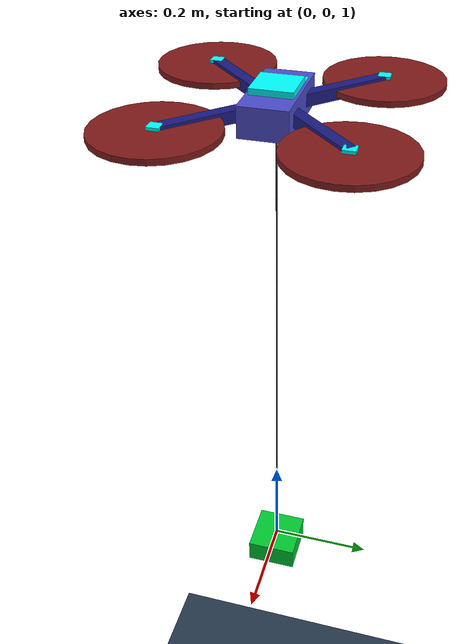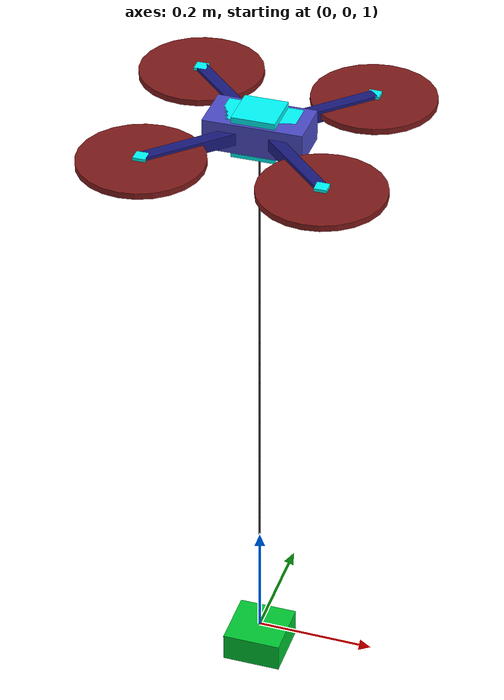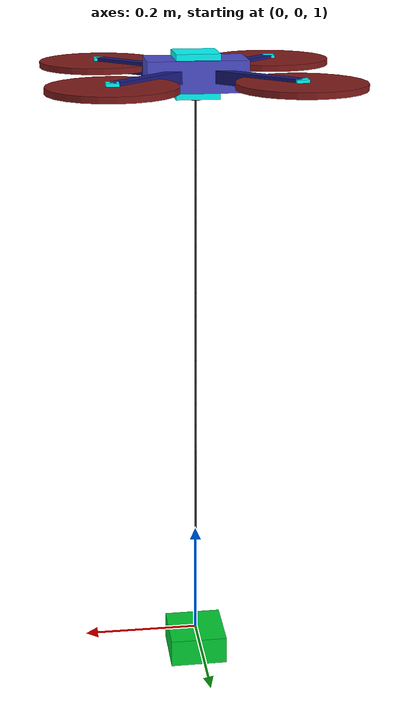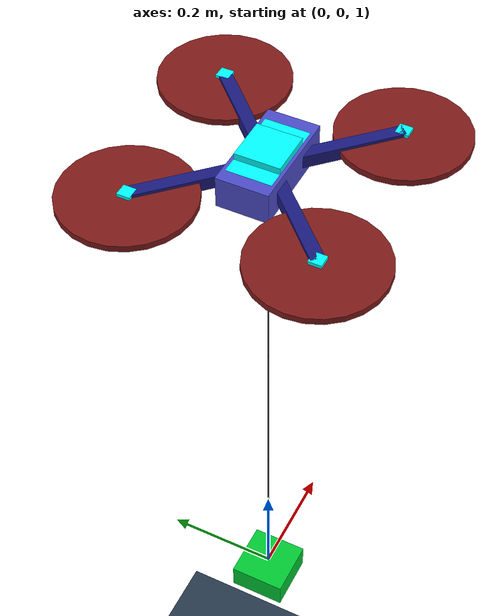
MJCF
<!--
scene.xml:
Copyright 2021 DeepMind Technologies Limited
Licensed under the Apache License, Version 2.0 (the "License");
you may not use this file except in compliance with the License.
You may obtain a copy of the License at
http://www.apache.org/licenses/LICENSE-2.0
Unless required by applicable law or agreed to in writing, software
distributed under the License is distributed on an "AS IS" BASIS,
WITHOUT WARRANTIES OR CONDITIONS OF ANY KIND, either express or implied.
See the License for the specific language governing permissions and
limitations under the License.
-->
<?xml version="1.0"?>
<mujoco model="QuadFlexibleCablePayload">
  <include file="scene.xml" />
  <compiler angle="degree" coordinate="local" inertiafromgeom="true" />
  <asset>
    <texture type="skybox" builtin="gradient" rgb1="1.0 1.0 1.0" rgb2="0.6 0.8 1.0" width="256"
      height="256" />
  </asset>
  <worldbody>
    <geom name="ground" type="plane" size="5.0 5.0 0.02" friction="1.0" pos="0.0 0.0 0.0"
      rgba="0.8 0.9 0.8 1.0" />
    <light directional="true" diffuse=".9 .9 .9" specular=".3 .3 .3" pos="0 0 4.0" dir="0 0.15 -1" />
    <body name="quadrotor" pos="0.0 0.0 2.0" quat="1 0 0 0">
      <geom name="quadrotor_geom" type="box" pos="0.0 0.0 0.0" quat="1 0 0 0" size="0.08 0.04 0.025"
        mass="0.75" density="1000" rgba="0.3 0.3 0.8 1.0" />
      <joint name="quadrotor_root_joint" type="free" />
      <geom name="quadrotor_rotor_arm_geom_0" type="box" pos="0.0 0.0 0.0"
        quat="0.92388 0 0 0.382683" size="0.2 0.01 0.01" mass="0.01" density="1000"
        rgba="0.1 0.1 0.5 1.0" />
      <geom name="quadrotor_rotor_prop_geom_0" type="cylinder" size="0.1 0.005"
        pos="0.1414213562373095 0.14142135623730953 0.0" mass="0.05" density="1000"
        rgba="0.5 0.1 0.1 1.0" />
      <geom name="quadrotor_rotor_arm_geom_1" type="box" pos="0.0 0.0 0.0"
        quat="0.382683 0 0 0.92388" size="0.2 0.01 0.01" mass="0.01" density="1000"
        rgba="0.1 0.1 0.5 1.0" />
      <geom name="quadrotor_rotor_prop_geom_1" type="cylinder" size="0.1 0.005"
        pos="-0.1414213562373095 0.14142135623730953 0.0" mass="0.05" density="1000"
        rgba="0.5 0.1 0.1 1.0" />
      <geom name="quadrotor_rotor_arm_geom_2" type="box" pos="0.0 0.0 0.0"
        quat="-0.382683 0 0 0.92388" size="0.2 0.01 0.01" mass="0.01" density="1000"
        rgba="0.1 0.1 0.5 1.0" />
      <geom name="quadrotor_rotor_prop_geom_2" type="cylinder" size="0.1 0.005"
        pos="-0.1414213562373095 -0.1414213562373095 0.0" mass="0.05" density="1000"
        rgba="0.5 0.1 0.1 1.0" />
      <geom name="quadrotor_rotor_arm_geom_3" type="box" pos="0.0 0.0 0.0"
        quat="-0.92388 0 0 0.382683" size="0.2 0.01 0.01" mass="0.01" density="1000"
        rgba="0.1 0.1 0.5 1.0" />
      <geom name="quadrotor_rotor_prop_geom_3" type="cylinder" size="0.1 0.005"
        pos="0.14142135623730948 -0.14142135623730956 0.0" mass="0.05" density="1000"
        rgba="0.5 0.1 0.1 1.0" />
      <site name="quadrotor_end1" type="sphere" pos="0.0 0.0 0.0" quat="1 0 0 0" size="0.01"
        rgba="0.1 0.1 0.5 1.0" />
      <site name="site0" type="box" pos="0.1414213562373095 0.14142135623730953 0.0" quat="1 0 0 0"
        size="0.01 0.01 0.01" rgba="0.0 1 1 1.0" />
      <site name="site1" type="box" pos="-0.1414213562373095 0.14142135623730953 0.0" quat="1 0 0 0"
        size="0.01 0.01 0.01" rgba="0.0 1 1 1.0" />
      <site name="site2" type="box" pos="-0.1414213562373095 -0.1414213562373095 0.0" quat="1 0 0 0"
        size="0.01 0.01 0.01" rgba="0.0 1 1 1.0" />
      <site name="site3" type="box" pos="0.14142135623730948 -0.14142135623730956 0.0"
        quat="1 0 0 0" size="0.01 0.01 0.01" rgba="0.0 1 1 1.0" />
      <site name="quadrotor_thrust" type="box" pos="0.0 0.0 0.0" quat="1 0 0 0"
        size="0.035 0.035 0.035" rgba="0.0 1 1 1.0" />
      <site name="quadrotor_Mx" type="box" pos="0.0 0.0 0.0" quat="1 0 0 0" size="0.06 0.035 0.025"
        rgba="0.0 1 1 1.0" />
      <site name="quadrotor_My" type="box" pos="0.0 0.0 0.0" quat="1 0 0 0" size="0.06 0.035 0.025"
        rgba="0.0 1 1 1.0" />
      <site name="quadrotor_Mz" type="box" pos="0.0 0.0 0.0" quat="1 0 0 0" size="0.06 0.035 0.025"
        rgba="0.0 1 1 1.0" />
      <body name="cable_0" pos="0.0 0.0 -0.02" quat="1 0 0 0">
        <joint name="cable_quad_joint_0" type="ball" limited="false" pos="0.0 0.0 0.02"
          damping="0.0001" stiffness="0" />
        <geom name="cable_cylinder_0" type="cylinder" size="0.01 0.02" pos="0.0 0.0 0.0"
          mass="0.0004" density="50" rgba="0.2 0.2 0.2 1.0" />
        <body name="cable_1" pos="0.0 0.0 -0.04" quat="1 0 0 0">
          <joint name="cable_quad_joint_1" type="ball" limited="false" pos="0.0 0.0 0.02"
            damping="0.001" stiffness="0.0" />
          <geom name="cable_cylinder_1" type="cylinder" size="0.0015 0.02" pos="0.0 0.0 0.0"
            mass="0.0004" density="50" rgba="0.2 0.2 0.2 1.0" />
          <body name="cable_2" pos="0.0 0.0 -0.04" quat="1 0 0 0">
            <joint name="cable_quad_joint_2" type="ball" limited="false" pos="0.0 0.0 0.02"
              damping="0.001" stiffness="0.0" />
            <geom name="cable_cylinder_2" type="cylinder" size="0.0015 0.02" pos="0.0 0.0 0.0"
              mass="0.0004" density="50" rgba="0.2 0.2 0.2 1.0" />
            <body name="cable_3" pos="0.0 0.0 -0.04" quat="1 0 0 0">
              <joint name="cable_quad_joint_3" type="ball" limited="false" pos="0.0 0.0 0.02"
                damping="0.001" stiffness="0.0" />
              <geom name="cable_cylinder_3" type="cylinder" size="0.0015 0.02" pos="0.0 0.0 0.0"
                mass="0.0004" density="50" rgba="0.2 0.2 0.2 1.0" />
              <body name="cable_4" pos="0.0 0.0 -0.04" quat="1 0 0 0">
                <joint name="cable_quad_joint_4" type="ball" limited="false" pos="0.0 0.0 0.02"
                  damping="0.001" stiffness="0.0" />
                <geom name="cable_cylinder_4" type="cylinder" size="0.0015 0.02" pos="0.0 0.0 0.0"
                  mass="0.0004" density="50" rgba="0.2 0.2 0.2 1.0" />
                <body name="cable_5" pos="0.0 0.0 -0.04" quat="1 0 0 0">
                  <joint name="cable_quad_joint_5" type="ball" limited="false" pos="0.0 0.0 0.02"
                    damping="0.001" stiffness="0.0" />
                  <geom name="cable_cylinder_5" type="cylinder" size="0.0015 0.02" pos="0.0 0.0 0.0"
                    mass="0.0004" density="50" rgba="0.2 0.2 0.2 1.0" />
                  <body name="cable_6" pos="0.0 0.0 -0.04" quat="1 0 0 0">
                    <joint name="cable_quad_joint_6" type="ball" limited="false" pos="0.0 0.0 0.02"
                      damping="0.001" stiffness="0.0" />
                    <geom name="cable_cylinder_6" type="cylinder" size="0.0015 0.02"
                      pos="0.0 0.0 0.0" mass="0.0004" density="50" rgba="0.2 0.2 0.2 1.0" />
                    <body name="cable_7" pos="0.0 0.0 -0.04" quat="1 0 0 0">
                      <joint name="cable_quad_joint_7" type="ball" limited="false"
                        pos="0.0 0.0 0.02" damping="0.001" stiffness="0.0" />
                      <geom name="cable_cylinder_7" type="cylinder" size="0.0015 0.02"
                        pos="0.0 0.0 0.0" mass="0.0004" density="50" rgba="0.2 0.2 0.2 1.0" />
                      <body name="cable_8" pos="0.0 0.0 -0.04" quat="1 0 0 0">
                        <joint name="cable_quad_joint_8" type="ball" limited="false"
                          pos="0.0 0.0 0.02" damping="0.001" stiffness="0.0" />
                        <geom name="cable_cylinder_8" type="cylinder" size="0.0015 0.02"
                          pos="0.0 0.0 0.0" mass="0.0004" density="50" rgba="0.2 0.2 0.2 1.0" />
                        <body name="cable_9" pos="0.0 0.0 -0.04" quat="1 0 0 0">
                          <joint name="cable_quad_joint_9" type="ball" limited="false"
                            pos="0.0 0.0 0.02" damping="0.001" stiffness="0.0" />
                          <geom name="cable_cylinder_9" type="cylinder" size="0.0015 0.02"
                            pos="0.0 0.0 0.0" mass="0.0004" density="50" rgba="0.2 0.2 0.2 1.0" />
                          <body name="cable_10" pos="0.0 0.0 -0.04" quat="1 0 0 0">
                            <joint name="cable_quad_joint_10" type="ball" limited="false"
                              pos="0.0 0.0 0.02" damping="0.001" stiffness="0.0" />
                            <geom name="cable_cylinder_10" type="cylinder" size="0.0015 0.02"
                              pos="0.0 0.0 0.0" mass="0.0004" density="50" rgba="0.2 0.2 0.2 1.0" />
                            <body name="cable_11" pos="0.0 0.0 -0.04" quat="1 0 0 0">
                              <joint name="cable_quad_joint_11" type="ball" limited="false"
                                pos="0.0 0.0 0.02" damping="0.001" stiffness="0.0" />
                              <geom name="cable_cylinder_11" type="cylinder" size="0.0015 0.02"
                                pos="0.0 0.0 0.0" mass="0.0004" density="50" rgba="0.2 0.2 0.2 1.0" />
                              <body name="cable_12" pos="0.0 0.0 -0.04" quat="1 0 0 0">
                                <joint name="cable_quad_joint_12" type="ball" limited="false"
                                  pos="0.0 0.0 0.02" damping="0.001" stiffness="0.0" />
                                <geom name="cable_cylinder_12" type="cylinder" size="0.0015 0.02"
                                  pos="0.0 0.0 0.0" mass="0.0004" density="50"
                                  rgba="0.2 0.2 0.2 1.0" />
                                <body name="cable_13" pos="0.0 0.0 -0.04" quat="1 0 0 0">
                                  <joint name="cable_quad_joint_13" type="ball" limited="false"
                                    pos="0.0 0.0 0.02" damping="0.001" stiffness="0.0" />
                                  <geom name="cable_cylinder_13" type="cylinder" size="0.0015 0.02"
                                    pos="0.0 0.0 0.0" mass="0.0004" density="50"
                                    rgba="0.2 0.2 0.2 1.0" />
                                  <body name="cable_14" pos="0.0 0.0 -0.04" quat="1 0 0 0">
                                    <joint name="cable_quad_joint_14" type="ball" limited="false"
                                      pos="0.0 0.0 0.02" damping="0.001" stiffness="0.0" />
                                    <geom name="cable_cylinder_14" type="cylinder"
                                      size="0.0015 0.02" pos="0.0 0.0 0.0" mass="0.0004"
                                      density="50" rgba="0.2 0.2 0.2 1.0" />
                                    <body name="cable_15" pos="0.0 0.0 -0.04" quat="1 0 0 0">
                                      <joint name="cable_quad_joint_15" type="ball" limited="false"
                                        pos="0.0 0.0 0.02" damping="0.001" stiffness="0.0" />
                                      <geom name="cable_cylinder_15" type="cylinder"
                                        size="0.0015 0.02" pos="0.0 0.0 0.0" mass="0.0004"
                                        density="50" rgba="0.2 0.2 0.2 1.0" />
                                      <body name="cable_16" pos="0.0 0.0 -0.04" quat="1 0 0 0">
                                        <joint name="cable_quad_joint_16" type="ball"
                                          limited="false" pos="0.0 0.0 0.02" damping="0.001"
                                          stiffness="0.0" />
                                        <geom name="cable_cylinder_16" type="cylinder"
                                          size="0.0015 0.02" pos="0.0 0.0 0.0" mass="0.0004"
                                          density="50" rgba="0.2 0.2 0.2 1.0" />
                                        <body name="cable_17" pos="0.0 0.0 -0.04" quat="1 0 0 0">
                                          <joint name="cable_quad_joint_17" type="ball"
                                            limited="false" pos="0.0 0.0 0.02" damping="0.001"
                                            stiffness="0.0" />
                                          <geom name="cable_cylinder_17" type="cylinder"
                                            size="0.0015 0.02" pos="0.0 0.0 0.0" mass="0.0004"
                                            density="50" rgba="0.2 0.2 0.2 1.0" />
                                          <body name="cable_18" pos="0.0 0.0 -0.04" quat="1 0 0 0">
                                            <joint name="cable_quad_joint_18" type="ball"
                                              limited="false" pos="0.0 0.0 0.02" damping="0.001"
                                              stiffness="0.0" />
                                            <geom name="cable_cylinder_18" type="cylinder"
                                              size="0.0015 0.02" pos="0.0 0.0 0.0" mass="0.0004"
                                              density="50" rgba="0.2 0.2 0.2 1.0" />
                                            <body name="cable_19" pos="0.0 0.0 -0.04" quat="1 0 0 0">
                                              <joint name="cable_quad_joint_19" type="ball"
                                                limited="false" pos="0.0 0.0 0.02" damping="0.001"
                                                stiffness="0.0" />
                                              <geom name="cable_cylinder_19" type="cylinder"
                                                size="0.0015 0.02" pos="0.0 0.0 0.0" mass="0.0004"
                                                density="50" rgba="0.2 0.2 0.2 1.0" />
                                              <body name="cable_20" pos="0.0 0.0 -0.04"
                                                quat="1 0 0 0">
                                                <joint name="cable_quad_joint_20" type="ball"
                                                  limited="false" pos="0.0 0.0 0.02" damping="0.001"
                                                  stiffness="0.0" />
                                                <geom name="cable_cylinder_20" type="cylinder"
                                                  size="0.0015 0.02" pos="0.0 0.0 0.0" mass="0.0004"
                                                  density="50" rgba="0.2 0.2 0.2 1.0" />
                                                <body name="cable_21" pos="0.0 0.0 -0.04"
                                                  quat="1 0 0 0">
                                                  <joint name="cable_quad_joint_21" type="ball"
                                                    limited="false" pos="0.0 0.0 0.02"
                                                    damping="0.001" stiffness="0.0" />
                                                  <geom name="cable_cylinder_21" type="cylinder"
                                                    size="0.0015 0.02" pos="0.0 0.0 0.0"
                                                    mass="0.0004" density="50"
                                                    rgba="0.2 0.2 0.2 1.0" />
                                                  <body name="cable_22" pos="0.0 0.0 -0.04"
                                                    quat="1 0 0 0">
                                                    <joint name="cable_quad_joint_22" type="ball"
                                                      limited="false" pos="0.0 0.0 0.02"
                                                      damping="0.001" stiffness="0.0" />
                                                    <geom name="cable_cylinder_22" type="cylinder"
                                                      size="0.0015 0.02" pos="0.0 0.0 0.0"
                                                      mass="0.0004" density="50"
                                                      rgba="0.2 0.2 0.2 1.0" />
                                                    <body name="cable_23" pos="0.0 0.0 -0.04"
                                                      quat="1 0 0 0">
                                                      <joint name="cable_quad_joint_23" type="ball"
                                                        limited="false" pos="0.0 0.0 0.02"
                                                        damping="0.001" stiffness="0.0" />
                                                      <geom name="cable_cylinder_23" type="cylinder"
                                                        size="0.0015 0.02" pos="0.0 0.0 0.0"
                                                        mass="0.0004" density="50"
                                                        rgba="0.2 0.2 0.2 1.0" />
                                                      <body name="cable_24" pos="0.0 0.0 -0.04"
                                                        quat="1 0 0 0">
                                                        <joint name="cable_quad_joint_24"
                                                          type="ball" limited="false"
                                                          pos="0.0 0.0 0.02" damping="0.001"
                                                          stiffness="0.0" />
                                                        <geom name="cable_cylinder_24"
                                                          type="cylinder" size="0.0015 0.02"
                                                          pos="0.0 0.0 0.0" mass="0.0004"
                                                          density="50" rgba="0.2 0.2 0.2 1.0" />
                                                        <body name="pyld" pos="0.0 0.0 -0.045"
                                                          quat="1 0 0 0">
                                                          <geom name="pyld" type="box"
                                                            pos="0.0 0.0 0.0" quat="1 0 0 0"
                                                            size="0.05 0.05 0.025" mass="0.15"
                                                            density="1" rgba="0.0 0.8 0.2 1.0" />
                                                          <joint name="pyld_joint" type="ball"
                                                            limited="false" pos="0.0 0.0 0.0"
                                                            damping="0" stiffness="0.0" />
                                                        </body>
                                                      </body>
                                                    </body>
                                                  </body>
                                                </body>
                                              </body>
                                            </body>
                                          </body>
                                        </body>
                                      </body>
                                    </body>
                                  </body>
                                </body>
                              </body>
                            </body>
                          </body>
                        </body>
                      </body>
                    </body>
                  </body>
                </body>
              </body>
            </body>
          </body>
        </body>
      </body>
    </body>
  </worldbody>
  <actuator>
    <motor ctrllimited="true" site="site0" ctrlrange="0.0 10.0"
      gear="0. 0. 1. 0. 0. -.024994577607878814" /> # each propeller can generate a force of 10N <motor
      ctrllimited="true" site="site1" ctrlrange="0.0 10.0" gear="0. 0. 1. 0. 0. .024994577607878814" />
     <motor
      ctrllimited="true" site="site2" ctrlrange="0.0 10.0"
      gear="0. 0. 1. 0. 0. -.024994577607878814" />
     <motor ctrllimited="true" site="site3"
      ctrlrange="0.0 10.0" gear="0. 0. 1. 0. 0. .024994577607878814" />
     <motor ctrllimited="true"
      site="quadrotor_thrust" ctrlrange="0.0 40.0" gear="0.0 0.0 1.0 0.0 0.0 0.0" />
     <motor
      ctrllimited="true" site="quadrotor_Mx" ctrlrange="-3.0 3.0" gear="0.0 0.0 0.0 1.0 0.0 0.0" />
     <motor
      ctrllimited="true" site="quadrotor_My" ctrlrange="-3.0 3.0" gear="0.0 0.0 0.0 0.0 1.0 0.0" />
     <motor
      ctrllimited="true" site="quadrotor_Mz" ctrlrange="-3.0 3.0" gear="0.0 0.0 0.0 0.0 0.0 1.0" />
  </actuator>
</mujoco>

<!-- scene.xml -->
<mujoco>
  <compiler meshdir="asset" texturedir="asset"/>

  <statistic meansize=".05"/>

  <visual>
    <rgba haze="0.15 0.25 0.35 1"/>
    <quality shadowsize="4096"/>
    <map stiffness="700" shadowscale="0.5" fogstart="1" fogend="15" zfar="40" haze="1"/>
  </visual>

  <asset>
    <texture type="skybox" builtin="gradient" rgb1="0.3 0.5 0.7" rgb2="0 0 0" width="512" height="512"/>
    <texture name="texplane" type="2d" builtin="checker" rgb1=".2 .3 .4" rgb2=".1 0.15 0.2"
      width="512" height="512" mark="cross" markrgb=".8 .8 .8"/>

    <material name="matplane" reflectance="0.3" texture="texplane" texrepeat="10 10" texuniform="true"/>
  </asset>

  <worldbody>
    <light diffuse=".4 .4 .4" specular="0.1 0.1 0.1" pos="0 0 2.0" dir="0 0 -1" castshadow="false"/>
    <light directional="true" diffuse=".8 .8 .8" specular="0.2 0.2 0.2" pos="0 0 4" dir="0 0 -1"/>

    <geom name="ground" type="plane" size="0 0 1" pos="0 0 0" quat="1 0 0 0" material="matplane" condim="1"/>
  </worldbody>
</mujoco>
